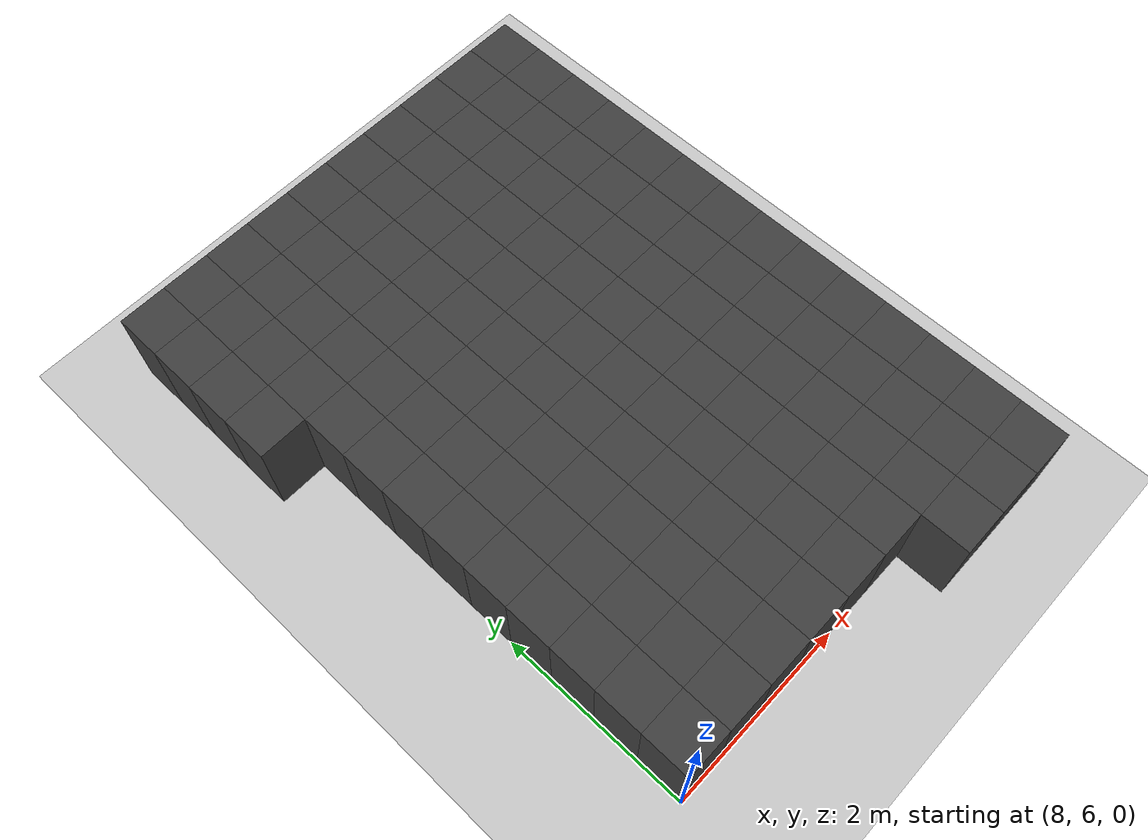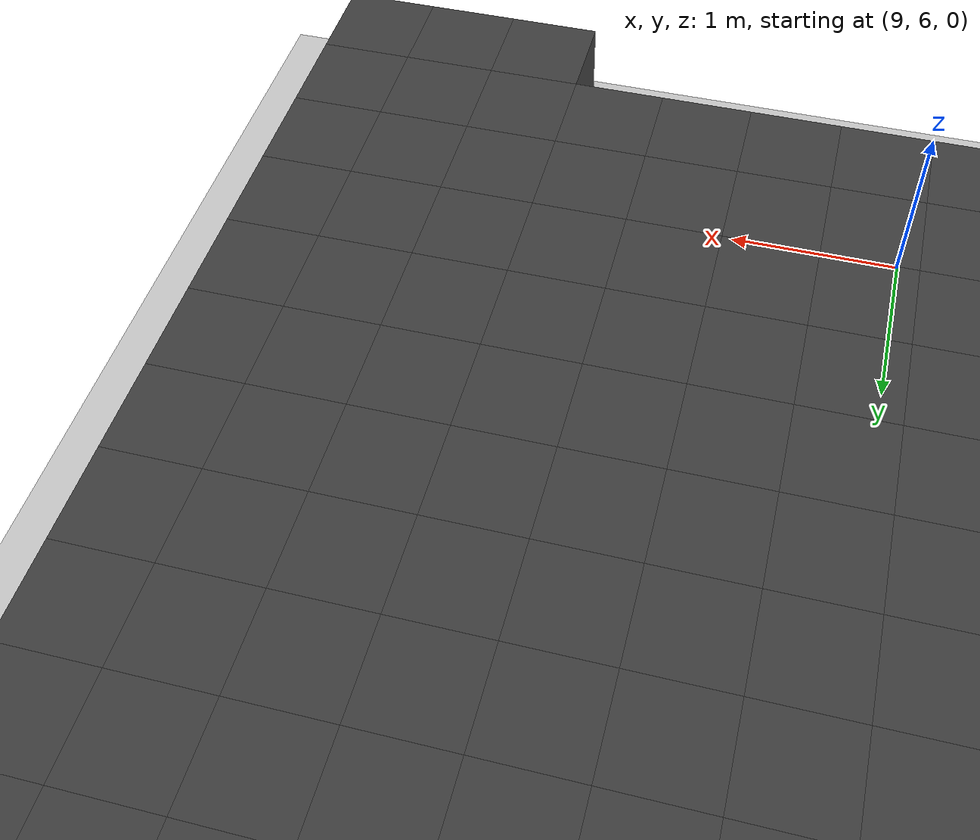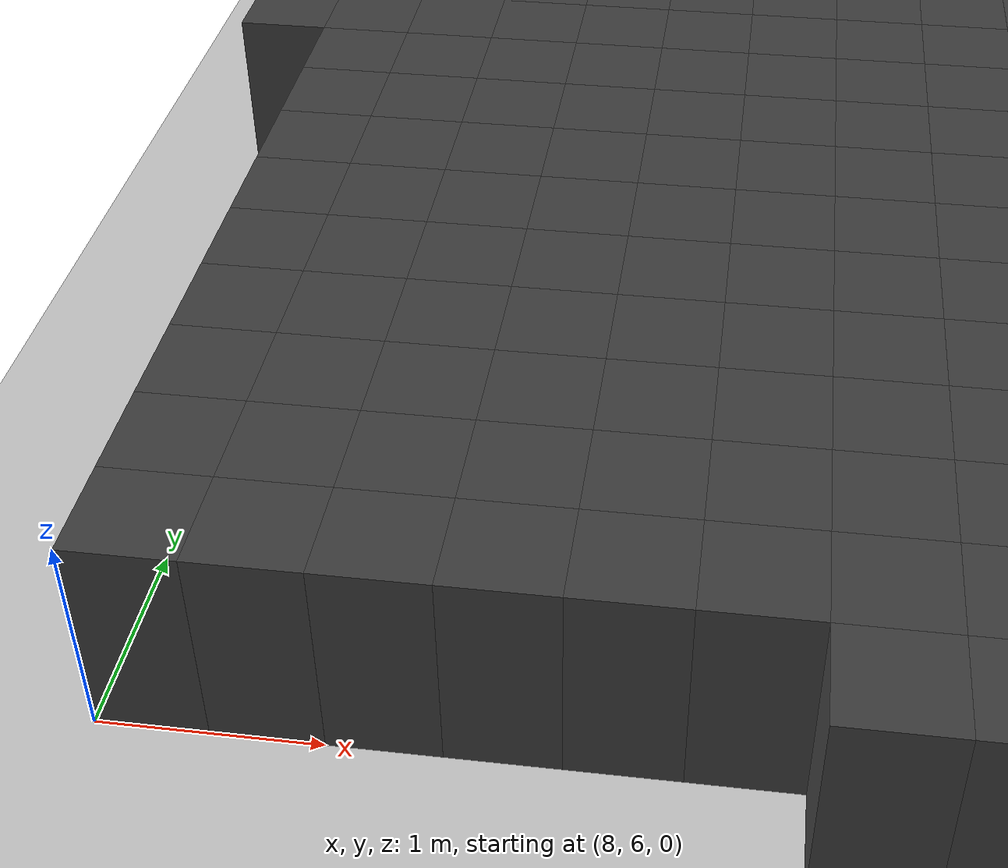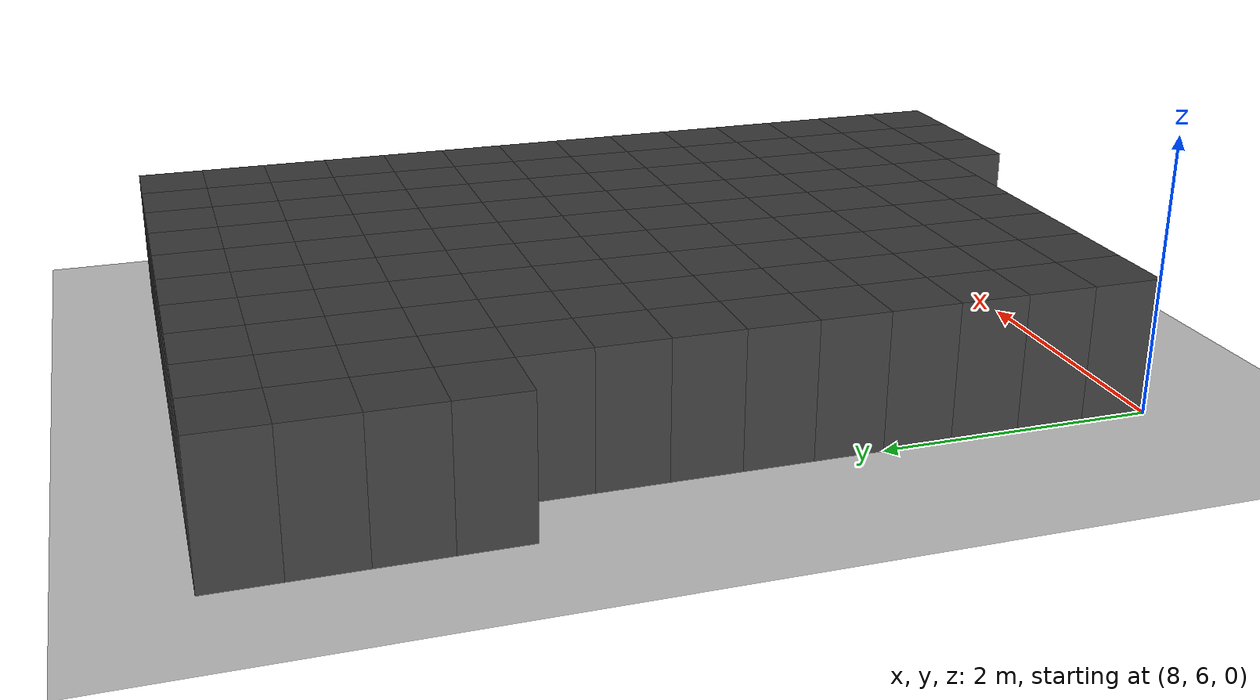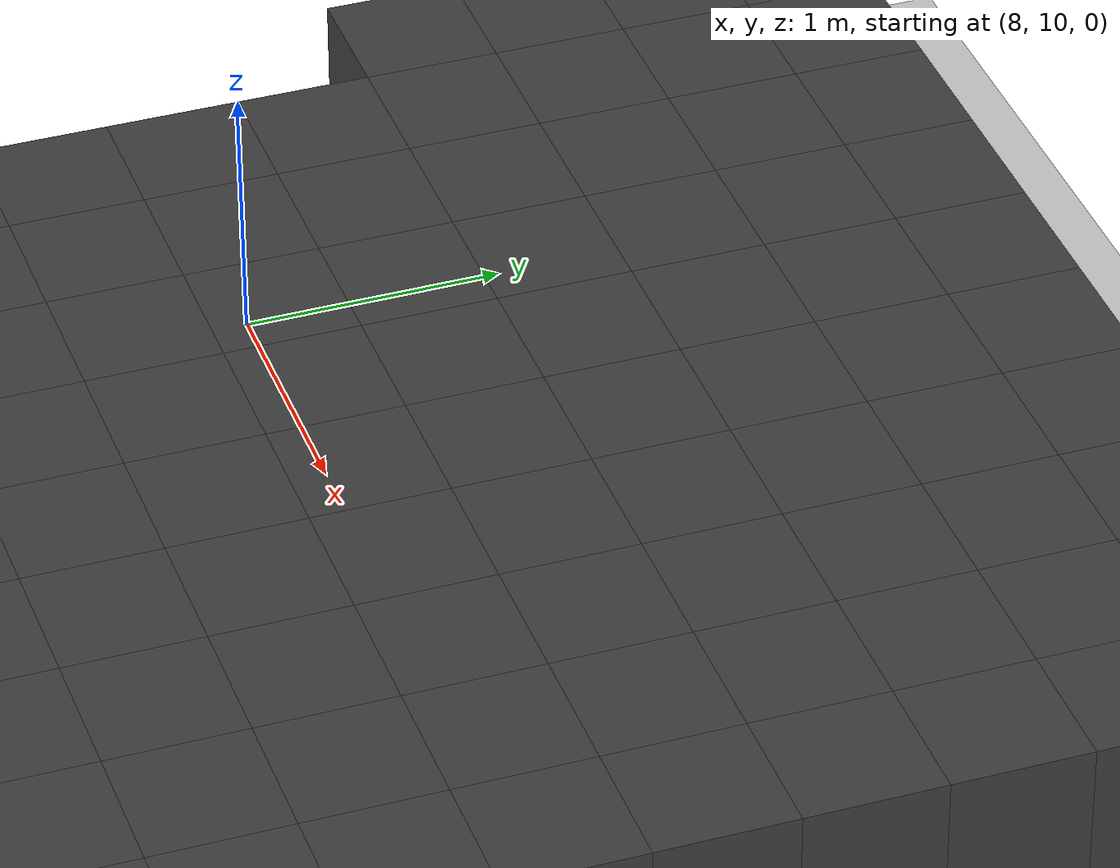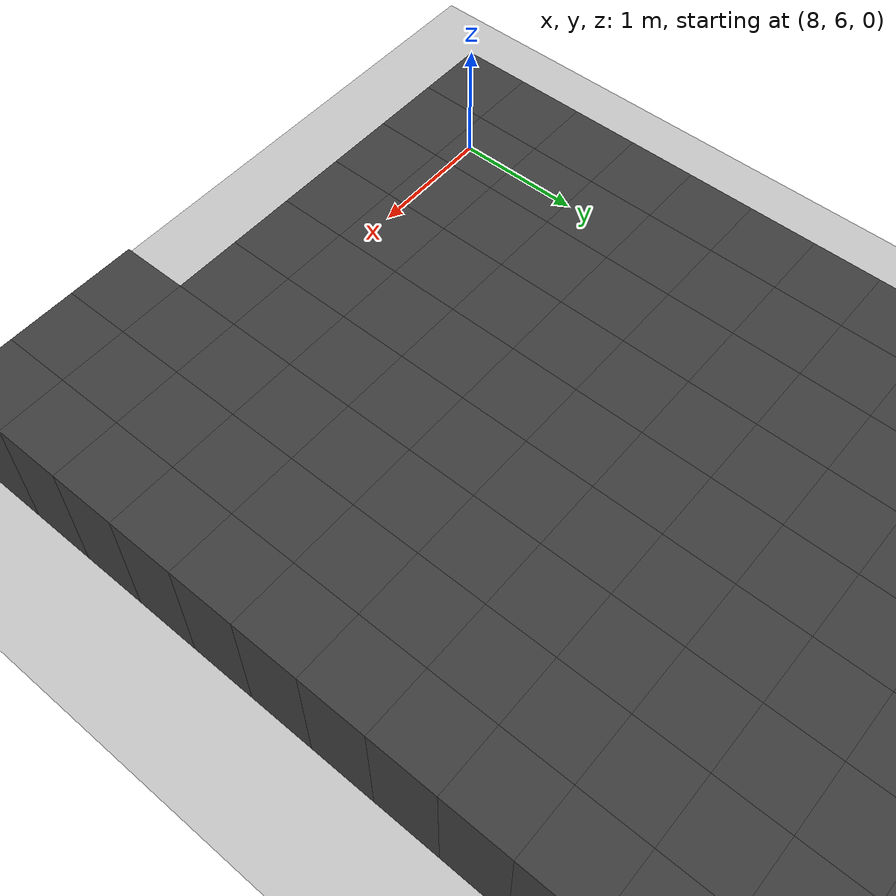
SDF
<sdf version="1.7">
 <world name="map_14668">
  <model name="ground_plane">
   <static>true</static>
   <link name="link">
    <collision name="collision">
     <geometry><plane><normal>0 0 1</normal><size>200 200</size></plane></geometry>
    </collision>
    <visual name="visual">
     <geometry><plane><normal>0 0 1</normal><size>200 200</size></plane></geometry>
     <material><ambient>0.8 0.8 0.8 1</ambient><diffuse>0.8 0.8 0.8 1</diffuse></material>
    </visual>
   </link>
  </model>
  <model name="maze_environment">
   <static>true</static>
   <link name="wall_40">
    <pose>7.750 12.250 0.500 0 0 0</pose>
    <collision name="col"><geometry><box><size>0.5 0.5 1.0</size></box></geometry></collision>
    <visual name="vis">
     <geometry><box><size>0.5 0.5 1.0</size></box></geometry>
     <material><ambient>0.15 0.15 0.15 1</ambient><diffuse>0.25 0.25 0.25 1</diffuse></material>
    </visual>
   </link>
   <link name="wall_41">
    <pose>8.250 12.250 0.500 0 0 0</pose>
    <collision name="col"><geometry><box><size>0.5 0.5 1.0</size></box></geometry></collision>
    <visual name="vis">
     <geometry><box><size>0.5 0.5 1.0</size></box></geometry>
     <material><ambient>0.15 0.15 0.15 1</ambient><diffuse>0.25 0.25 0.25 1</diffuse></material>
    </visual>
   </link>
   <link name="wall_42">
    <pose>8.750 12.250 0.500 0 0 0</pose>
    <collision name="col"><geometry><box><size>0.5 0.5 1.0</size></box></geometry></collision>
    <visual name="vis">
     <geometry><box><size>0.5 0.5 1.0</size></box></geometry>
     <material><ambient>0.15 0.15 0.15 1</ambient><diffuse>0.25 0.25 0.25 1</diffuse></material>
    </visual>
   </link>
   <link name="wall_43">
    <pose>9.250 12.250 0.500 0 0 0</pose>
    <collision name="col"><geometry><box><size>0.5 0.5 1.0</size></box></geometry></collision>
    <visual name="vis">
     <geometry><box><size>0.5 0.5 1.0</size></box></geometry>
     <material><ambient>0.15 0.15 0.15 1</ambient><diffuse>0.25 0.25 0.25 1</diffuse></material>
    </visual>
   </link>
   <link name="wall_44">
    <pose>9.750 12.250 0.500 0 0 0</pose>
    <collision name="col"><geometry><box><size>0.5 0.5 1.0</size></box></geometry></collision>
    <visual name="vis">
     <geometry><box><size>0.5 0.5 1.0</size></box></geometry>
     <material><ambient>0.15 0.15 0.15 1</ambient><diffuse>0.25 0.25 0.25 1</diffuse></material>
    </visual>
   </link>
   <link name="wall_45">
    <pose>10.250 12.250 0.500 0 0 0</pose>
    <collision name="col"><geometry><box><size>0.5 0.5 1.0</size></box></geometry></collision>
    <visual name="vis">
     <geometry><box><size>0.5 0.5 1.0</size></box></geometry>
     <material><ambient>0.15 0.15 0.15 1</ambient><diffuse>0.25 0.25 0.25 1</diffuse></material>
    </visual>
   </link>
   <link name="wall_46">
    <pose>10.750 12.250 0.500 0 0 0</pose>
    <collision name="col"><geometry><box><size>0.5 0.5 1.0</size></box></geometry></collision>
    <visual name="vis">
     <geometry><box><size>0.5 0.5 1.0</size></box></geometry>
     <material><ambient>0.15 0.15 0.15 1</ambient><diffuse>0.25 0.25 0.25 1</diffuse></material>
    </visual>
   </link>
   <link name="wall_47">
    <pose>11.250 12.250 0.500 0 0 0</pose>
    <collision name="col"><geometry><box><size>0.5 0.5 1.0</size></box></geometry></collision>
    <visual name="vis">
     <geometry><box><size>0.5 0.5 1.0</size></box></geometry>
     <material><ambient>0.15 0.15 0.15 1</ambient><diffuse>0.25 0.25 0.25 1</diffuse></material>
    </visual>
   </link>
   <link name="wall_48">
    <pose>11.750 12.250 0.500 0 0 0</pose>
    <collision name="col"><geometry><box><size>0.5 0.5 1.0</size></box></geometry></collision>
    <visual name="vis">
     <geometry><box><size>0.5 0.5 1.0</size></box></geometry>
     <material><ambient>0.15 0.15 0.15 1</ambient><diffuse>0.25 0.25 0.25 1</diffuse></material>
    </visual>
   </link>
   <link name="wall_49">
    <pose>12.250 12.250 0.500 0 0 0</pose>
    <collision name="col"><geometry><box><size>0.5 0.5 1.0</size></box></geometry></collision>
    <visual name="vis">
     <geometry><box><size>0.5 0.5 1.0</size></box></geometry>
     <material><ambient>0.15 0.15 0.15 1</ambient><diffuse>0.25 0.25 0.25 1</diffuse></material>
    </visual>
   </link>
   <link name="wall_87">
    <pose>7.750 11.750 0.500 0 0 0</pose>
    <collision name="col"><geometry><box><size>0.5 0.5 1.0</size></box></geometry></collision>
    <visual name="vis">
     <geometry><box><size>0.5 0.5 1.0</size></box></geometry>
     <material><ambient>0.15 0.15 0.15 1</ambient><diffuse>0.25 0.25 0.25 1</diffuse></material>
    </visual>
   </link>
   <link name="wall_88">
    <pose>8.250 11.750 0.500 0 0 0</pose>
    <collision name="col"><geometry><box><size>0.5 0.5 1.0</size></box></geometry></collision>
    <visual name="vis">
     <geometry><box><size>0.5 0.5 1.0</size></box></geometry>
     <material><ambient>0.15 0.15 0.15 1</ambient><diffuse>0.25 0.25 0.25 1</diffuse></material>
    </visual>
   </link>
   <link name="wall_89">
    <pose>8.750 11.750 0.500 0 0 0</pose>
    <collision name="col"><geometry><box><size>0.5 0.5 1.0</size></box></geometry></collision>
    <visual name="vis">
     <geometry><box><size>0.5 0.5 1.0</size></box></geometry>
     <material><ambient>0.15 0.15 0.15 1</ambient><diffuse>0.25 0.25 0.25 1</diffuse></material>
    </visual>
   </link>
   <link name="wall_90">
    <pose>9.250 11.750 0.500 0 0 0</pose>
    <collision name="col"><geometry><box><size>0.5 0.5 1.0</size></box></geometry></collision>
    <visual name="vis">
     <geometry><box><size>0.5 0.5 1.0</size></box></geometry>
     <material><ambient>0.15 0.15 0.15 1</ambient><diffuse>0.25 0.25 0.25 1</diffuse></material>
    </visual>
   </link>
   <link name="wall_91">
    <pose>9.750 11.750 0.500 0 0 0</pose>
    <collision name="col"><geometry><box><size>0.5 0.5 1.0</size></box></geometry></collision>
    <visual name="vis">
     <geometry><box><size>0.5 0.5 1.0</size></box></geometry>
     <material><ambient>0.15 0.15 0.15 1</ambient><diffuse>0.25 0.25 0.25 1</diffuse></material>
    </visual>
   </link>
   <link name="wall_92">
    <pose>10.250 11.750 0.500 0 0 0</pose>
    <collision name="col"><geometry><box><size>0.5 0.5 1.0</size></box></geometry></collision>
    <visual name="vis">
     <geometry><box><size>0.5 0.5 1.0</size></box></geometry>
     <material><ambient>0.15 0.15 0.15 1</ambient><diffuse>0.25 0.25 0.25 1</diffuse></material>
    </visual>
   </link>
   <link name="wall_93">
    <pose>10.750 11.750 0.500 0 0 0</pose>
    <collision name="col"><geometry><box><size>0.5 0.5 1.0</size></box></geometry></collision>
    <visual name="vis">
     <geometry><box><size>0.5 0.5 1.0</size></box></geometry>
     <material><ambient>0.15 0.15 0.15 1</ambient><diffuse>0.25 0.25 0.25 1</diffuse></material>
    </visual>
   </link>
   <link name="wall_94">
    <pose>11.250 11.750 0.500 0 0 0</pose>
    <collision name="col"><geometry><box><size>0.5 0.5 1.0</size></box></geometry></collision>
    <visual name="vis">
     <geometry><box><size>0.5 0.5 1.0</size></box></geometry>
     <material><ambient>0.15 0.15 0.15 1</ambient><diffuse>0.25 0.25 0.25 1</diffuse></material>
    </visual>
   </link>
   <link name="wall_95">
    <pose>11.750 11.750 0.500 0 0 0</pose>
    <collision name="col"><geometry><box><size>0.5 0.5 1.0</size></box></geometry></collision>
    <visual name="vis">
     <geometry><box><size>0.5 0.5 1.0</size></box></geometry>
     <material><ambient>0.15 0.15 0.15 1</ambient><diffuse>0.25 0.25 0.25 1</diffuse></material>
    </visual>
   </link>
   <link name="wall_96">
    <pose>12.250 11.750 0.500 0 0 0</pose>
    <collision name="col"><geometry><box><size>0.5 0.5 1.0</size></box></geometry></collision>
    <visual name="vis">
     <geometry><box><size>0.5 0.5 1.0</size></box></geometry>
     <material><ambient>0.15 0.15 0.15 1</ambient><diffuse>0.25 0.25 0.25 1</diffuse></material>
    </visual>
   </link>
   <link name="wall_134">
    <pose>7.750 11.250 0.500 0 0 0</pose>
    <collision name="col"><geometry><box><size>0.5 0.5 1.0</size></box></geometry></collision>
    <visual name="vis">
     <geometry><box><size>0.5 0.5 1.0</size></box></geometry>
     <material><ambient>0.15 0.15 0.15 1</ambient><diffuse>0.25 0.25 0.25 1</diffuse></material>
    </visual>
   </link>
   <link name="wall_135">
    <pose>8.250 11.250 0.500 0 0 0</pose>
    <collision name="col"><geometry><box><size>0.5 0.5 1.0</size></box></geometry></collision>
    <visual name="vis">
     <geometry><box><size>0.5 0.5 1.0</size></box></geometry>
     <material><ambient>0.15 0.15 0.15 1</ambient><diffuse>0.25 0.25 0.25 1</diffuse></material>
    </visual>
   </link>
   <link name="wall_136">
    <pose>8.750 11.250 0.500 0 0 0</pose>
    <collision name="col"><geometry><box><size>0.5 0.5 1.0</size></box></geometry></collision>
    <visual name="vis">
     <geometry><box><size>0.5 0.5 1.0</size></box></geometry>
     <material><ambient>0.15 0.15 0.15 1</ambient><diffuse>0.25 0.25 0.25 1</diffuse></material>
    </visual>
   </link>
   <link name="wall_137">
    <pose>9.250 11.250 0.500 0 0 0</pose>
    <collision name="col"><geometry><box><size>0.5 0.5 1.0</size></box></geometry></collision>
    <visual name="vis">
     <geometry><box><size>0.5 0.5 1.0</size></box></geometry>
     <material><ambient>0.15 0.15 0.15 1</ambient><diffuse>0.25 0.25 0.25 1</diffuse></material>
    </visual>
   </link>
   <link name="wall_138">
    <pose>9.750 11.250 0.500 0 0 0</pose>
    <collision name="col"><geometry><box><size>0.5 0.5 1.0</size></box></geometry></collision>
    <visual name="vis">
     <geometry><box><size>0.5 0.5 1.0</size></box></geometry>
     <material><ambient>0.15 0.15 0.15 1</ambient><diffuse>0.25 0.25 0.25 1</diffuse></material>
    </visual>
   </link>
   <link name="wall_139">
    <pose>10.250 11.250 0.500 0 0 0</pose>
    <collision name="col"><geometry><box><size>0.5 0.5 1.0</size></box></geometry></collision>
    <visual name="vis">
     <geometry><box><size>0.5 0.5 1.0</size></box></geometry>
     <material><ambient>0.15 0.15 0.15 1</ambient><diffuse>0.25 0.25 0.25 1</diffuse></material>
    </visual>
   </link>
   <link name="wall_140">
    <pose>10.750 11.250 0.500 0 0 0</pose>
    <collision name="col"><geometry><box><size>0.5 0.5 1.0</size></box></geometry></collision>
    <visual name="vis">
     <geometry><box><size>0.5 0.5 1.0</size></box></geometry>
     <material><ambient>0.15 0.15 0.15 1</ambient><diffuse>0.25 0.25 0.25 1</diffuse></material>
    </visual>
   </link>
   <link name="wall_141">
    <pose>11.250 11.250 0.500 0 0 0</pose>
    <collision name="col"><geometry><box><size>0.5 0.5 1.0</size></box></geometry></collision>
    <visual name="vis">
     <geometry><box><size>0.5 0.5 1.0</size></box></geometry>
     <material><ambient>0.15 0.15 0.15 1</ambient><diffuse>0.25 0.25 0.25 1</diffuse></material>
    </visual>
   </link>
   <link name="wall_142">
    <pose>11.750 11.250 0.500 0 0 0</pose>
    <collision name="col"><geometry><box><size>0.5 0.5 1.0</size></box></geometry></collision>
    <visual name="vis">
     <geometry><box><size>0.5 0.5 1.0</size></box></geometry>
     <material><ambient>0.15 0.15 0.15 1</ambient><diffuse>0.25 0.25 0.25 1</diffuse></material>
    </visual>
   </link>
   <link name="wall_143">
    <pose>12.250 11.250 0.500 0 0 0</pose>
    <collision name="col"><geometry><box><size>0.5 0.5 1.0</size></box></geometry></collision>
    <visual name="vis">
     <geometry><box><size>0.5 0.5 1.0</size></box></geometry>
     <material><ambient>0.15 0.15 0.15 1</ambient><diffuse>0.25 0.25 0.25 1</diffuse></material>
    </visual>
   </link>
   <link name="wall_173">
    <pose>7.750 10.750 0.500 0 0 0</pose>
    <collision name="col"><geometry><box><size>0.5 0.5 1.0</size></box></geometry></collision>
    <visual name="vis">
     <geometry><box><size>0.5 0.5 1.0</size></box></geometry>
     <material><ambient>0.15 0.15 0.15 1</ambient><diffuse>0.25 0.25 0.25 1</diffuse></material>
    </visual>
   </link>
   <link name="wall_174">
    <pose>8.250 10.750 0.500 0 0 0</pose>
    <collision name="col"><geometry><box><size>0.5 0.5 1.0</size></box></geometry></collision>
    <visual name="vis">
     <geometry><box><size>0.5 0.5 1.0</size></box></geometry>
     <material><ambient>0.15 0.15 0.15 1</ambient><diffuse>0.25 0.25 0.25 1</diffuse></material>
    </visual>
   </link>
   <link name="wall_175">
    <pose>8.750 10.750 0.500 0 0 0</pose>
    <collision name="col"><geometry><box><size>0.5 0.5 1.0</size></box></geometry></collision>
    <visual name="vis">
     <geometry><box><size>0.5 0.5 1.0</size></box></geometry>
     <material><ambient>0.15 0.15 0.15 1</ambient><diffuse>0.25 0.25 0.25 1</diffuse></material>
    </visual>
   </link>
   <link name="wall_176">
    <pose>9.250 10.750 0.500 0 0 0</pose>
    <collision name="col"><geometry><box><size>0.5 0.5 1.0</size></box></geometry></collision>
    <visual name="vis">
     <geometry><box><size>0.5 0.5 1.0</size></box></geometry>
     <material><ambient>0.15 0.15 0.15 1</ambient><diffuse>0.25 0.25 0.25 1</diffuse></material>
    </visual>
   </link>
   <link name="wall_177">
    <pose>9.750 10.750 0.500 0 0 0</pose>
    <collision name="col"><geometry><box><size>0.5 0.5 1.0</size></box></geometry></collision>
    <visual name="vis">
     <geometry><box><size>0.5 0.5 1.0</size></box></geometry>
     <material><ambient>0.15 0.15 0.15 1</ambient><diffuse>0.25 0.25 0.25 1</diffuse></material>
    </visual>
   </link>
   <link name="wall_178">
    <pose>10.250 10.750 0.500 0 0 0</pose>
    <collision name="col"><geometry><box><size>0.5 0.5 1.0</size></box></geometry></collision>
    <visual name="vis">
     <geometry><box><size>0.5 0.5 1.0</size></box></geometry>
     <material><ambient>0.15 0.15 0.15 1</ambient><diffuse>0.25 0.25 0.25 1</diffuse></material>
    </visual>
   </link>
   <link name="wall_179">
    <pose>10.750 10.750 0.500 0 0 0</pose>
    <collision name="col"><geometry><box><size>0.5 0.5 1.0</size></box></geometry></collision>
    <visual name="vis">
     <geometry><box><size>0.5 0.5 1.0</size></box></geometry>
     <material><ambient>0.15 0.15 0.15 1</ambient><diffuse>0.25 0.25 0.25 1</diffuse></material>
    </visual>
   </link>
   <link name="wall_180">
    <pose>11.250 10.750 0.500 0 0 0</pose>
    <collision name="col"><geometry><box><size>0.5 0.5 1.0</size></box></geometry></collision>
    <visual name="vis">
     <geometry><box><size>0.5 0.5 1.0</size></box></geometry>
     <material><ambient>0.15 0.15 0.15 1</ambient><diffuse>0.25 0.25 0.25 1</diffuse></material>
    </visual>
   </link>
   <link name="wall_181">
    <pose>11.750 10.750 0.500 0 0 0</pose>
    <collision name="col"><geometry><box><size>0.5 0.5 1.0</size></box></geometry></collision>
    <visual name="vis">
     <geometry><box><size>0.5 0.5 1.0</size></box></geometry>
     <material><ambient>0.15 0.15 0.15 1</ambient><diffuse>0.25 0.25 0.25 1</diffuse></material>
    </visual>
   </link>
   <link name="wall_182">
    <pose>12.250 10.750 0.500 0 0 0</pose>
    <collision name="col"><geometry><box><size>0.5 0.5 1.0</size></box></geometry></collision>
    <visual name="vis">
     <geometry><box><size>0.5 0.5 1.0</size></box></geometry>
     <material><ambient>0.15 0.15 0.15 1</ambient><diffuse>0.25 0.25 0.25 1</diffuse></material>
    </visual>
   </link>
   <link name="wall_215">
    <pose>8.250 10.250 0.500 0 0 0</pose>
    <collision name="col"><geometry><box><size>0.5 0.5 1.0</size></box></geometry></collision>
    <visual name="vis">
     <geometry><box><size>0.5 0.5 1.0</size></box></geometry>
     <material><ambient>0.15 0.15 0.15 1</ambient><diffuse>0.25 0.25 0.25 1</diffuse></material>
    </visual>
   </link>
   <link name="wall_216">
    <pose>8.750 10.250 0.500 0 0 0</pose>
    <collision name="col"><geometry><box><size>0.5 0.5 1.0</size></box></geometry></collision>
    <visual name="vis">
     <geometry><box><size>0.5 0.5 1.0</size></box></geometry>
     <material><ambient>0.15 0.15 0.15 1</ambient><diffuse>0.25 0.25 0.25 1</diffuse></material>
    </visual>
   </link>
   <link name="wall_217">
    <pose>9.250 10.250 0.500 0 0 0</pose>
    <collision name="col"><geometry><box><size>0.5 0.5 1.0</size></box></geometry></collision>
    <visual name="vis">
     <geometry><box><size>0.5 0.5 1.0</size></box></geometry>
     <material><ambient>0.15 0.15 0.15 1</ambient><diffuse>0.25 0.25 0.25 1</diffuse></material>
    </visual>
   </link>
   <link name="wall_218">
    <pose>9.750 10.250 0.500 0 0 0</pose>
    <collision name="col"><geometry><box><size>0.5 0.5 1.0</size></box></geometry></collision>
    <visual name="vis">
     <geometry><box><size>0.5 0.5 1.0</size></box></geometry>
     <material><ambient>0.15 0.15 0.15 1</ambient><diffuse>0.25 0.25 0.25 1</diffuse></material>
    </visual>
   </link>
   <link name="wall_219">
    <pose>10.250 10.250 0.500 0 0 0</pose>
    <collision name="col"><geometry><box><size>0.5 0.5 1.0</size></box></geometry></collision>
    <visual name="vis">
     <geometry><box><size>0.5 0.5 1.0</size></box></geometry>
     <material><ambient>0.15 0.15 0.15 1</ambient><diffuse>0.25 0.25 0.25 1</diffuse></material>
    </visual>
   </link>
   <link name="wall_220">
    <pose>10.750 10.250 0.500 0 0 0</pose>
    <collision name="col"><geometry><box><size>0.5 0.5 1.0</size></box></geometry></collision>
    <visual name="vis">
     <geometry><box><size>0.5 0.5 1.0</size></box></geometry>
     <material><ambient>0.15 0.15 0.15 1</ambient><diffuse>0.25 0.25 0.25 1</diffuse></material>
    </visual>
   </link>
   <link name="wall_221">
    <pose>11.250 10.250 0.500 0 0 0</pose>
    <collision name="col"><geometry><box><size>0.5 0.5 1.0</size></box></geometry></collision>
    <visual name="vis">
     <geometry><box><size>0.5 0.5 1.0</size></box></geometry>
     <material><ambient>0.15 0.15 0.15 1</ambient><diffuse>0.25 0.25 0.25 1</diffuse></material>
    </visual>
   </link>
   <link name="wall_222">
    <pose>11.750 10.250 0.500 0 0 0</pose>
    <collision name="col"><geometry><box><size>0.5 0.5 1.0</size></box></geometry></collision>
    <visual name="vis">
     <geometry><box><size>0.5 0.5 1.0</size></box></geometry>
     <material><ambient>0.15 0.15 0.15 1</ambient><diffuse>0.25 0.25 0.25 1</diffuse></material>
    </visual>
   </link>
   <link name="wall_223">
    <pose>12.250 10.250 0.500 0 0 0</pose>
    <collision name="col"><geometry><box><size>0.5 0.5 1.0</size></box></geometry></collision>
    <visual name="vis">
     <geometry><box><size>0.5 0.5 1.0</size></box></geometry>
     <material><ambient>0.15 0.15 0.15 1</ambient><diffuse>0.25 0.25 0.25 1</diffuse></material>
    </visual>
   </link>
   <link name="wall_242">
    <pose>8.250 9.750 0.500 0 0 0</pose>
    <collision name="col"><geometry><box><size>0.5 0.5 1.0</size></box></geometry></collision>
    <visual name="vis">
     <geometry><box><size>0.5 0.5 1.0</size></box></geometry>
     <material><ambient>0.15 0.15 0.15 1</ambient><diffuse>0.25 0.25 0.25 1</diffuse></material>
    </visual>
   </link>
   <link name="wall_243">
    <pose>8.750 9.750 0.500 0 0 0</pose>
    <collision name="col"><geometry><box><size>0.5 0.5 1.0</size></box></geometry></collision>
    <visual name="vis">
     <geometry><box><size>0.5 0.5 1.0</size></box></geometry>
     <material><ambient>0.15 0.15 0.15 1</ambient><diffuse>0.25 0.25 0.25 1</diffuse></material>
    </visual>
   </link>
   <link name="wall_244">
    <pose>9.250 9.750 0.500 0 0 0</pose>
    <collision name="col"><geometry><box><size>0.5 0.5 1.0</size></box></geometry></collision>
    <visual name="vis">
     <geometry><box><size>0.5 0.5 1.0</size></box></geometry>
     <material><ambient>0.15 0.15 0.15 1</ambient><diffuse>0.25 0.25 0.25 1</diffuse></material>
    </visual>
   </link>
   <link name="wall_245">
    <pose>9.750 9.750 0.500 0 0 0</pose>
    <collision name="col"><geometry><box><size>0.5 0.5 1.0</size></box></geometry></collision>
    <visual name="vis">
     <geometry><box><size>0.5 0.5 1.0</size></box></geometry>
     <material><ambient>0.15 0.15 0.15 1</ambient><diffuse>0.25 0.25 0.25 1</diffuse></material>
    </visual>
   </link>
   <link name="wall_246">
    <pose>10.250 9.750 0.500 0 0 0</pose>
    <collision name="col"><geometry><box><size>0.5 0.5 1.0</size></box></geometry></collision>
    <visual name="vis">
     <geometry><box><size>0.5 0.5 1.0</size></box></geometry>
     <material><ambient>0.15 0.15 0.15 1</ambient><diffuse>0.25 0.25 0.25 1</diffuse></material>
    </visual>
   </link>
   <link name="wall_247">
    <pose>10.750 9.750 0.500 0 0 0</pose>
    <collision name="col"><geometry><box><size>0.5 0.5 1.0</size></box></geometry></collision>
    <visual name="vis">
     <geometry><box><size>0.5 0.5 1.0</size></box></geometry>
     <material><ambient>0.15 0.15 0.15 1</ambient><diffuse>0.25 0.25 0.25 1</diffuse></material>
    </visual>
   </link>
   <link name="wall_248">
    <pose>11.250 9.750 0.500 0 0 0</pose>
    <collision name="col"><geometry><box><size>0.5 0.5 1.0</size></box></geometry></collision>
    <visual name="vis">
     <geometry><box><size>0.5 0.5 1.0</size></box></geometry>
     <material><ambient>0.15 0.15 0.15 1</ambient><diffuse>0.25 0.25 0.25 1</diffuse></material>
    </visual>
   </link>
   <link name="wall_249">
    <pose>11.750 9.750 0.500 0 0 0</pose>
    <collision name="col"><geometry><box><size>0.5 0.5 1.0</size></box></geometry></collision>
    <visual name="vis">
     <geometry><box><size>0.5 0.5 1.0</size></box></geometry>
     <material><ambient>0.15 0.15 0.15 1</ambient><diffuse>0.25 0.25 0.25 1</diffuse></material>
    </visual>
   </link>
   <link name="wall_250">
    <pose>12.250 9.750 0.500 0 0 0</pose>
    <collision name="col"><geometry><box><size>0.5 0.5 1.0</size></box></geometry></collision>
    <visual name="vis">
     <geometry><box><size>0.5 0.5 1.0</size></box></geometry>
     <material><ambient>0.15 0.15 0.15 1</ambient><diffuse>0.25 0.25 0.25 1</diffuse></material>
    </visual>
   </link>
   <link name="wall_272">
    <pose>8.250 9.250 0.500 0 0 0</pose>
    <collision name="col"><geometry><box><size>0.5 0.5 1.0</size></box></geometry></collision>
    <visual name="vis">
     <geometry><box><size>0.5 0.5 1.0</size></box></geometry>
     <material><ambient>0.15 0.15 0.15 1</ambient><diffuse>0.25 0.25 0.25 1</diffuse></material>
    </visual>
   </link>
   <link name="wall_273">
    <pose>8.750 9.250 0.500 0 0 0</pose>
    <collision name="col"><geometry><box><size>0.5 0.5 1.0</size></box></geometry></collision>
    <visual name="vis">
     <geometry><box><size>0.5 0.5 1.0</size></box></geometry>
     <material><ambient>0.15 0.15 0.15 1</ambient><diffuse>0.25 0.25 0.25 1</diffuse></material>
    </visual>
   </link>
   <link name="wall_274">
    <pose>9.250 9.250 0.500 0 0 0</pose>
    <collision name="col"><geometry><box><size>0.5 0.5 1.0</size></box></geometry></collision>
    <visual name="vis">
     <geometry><box><size>0.5 0.5 1.0</size></box></geometry>
     <material><ambient>0.15 0.15 0.15 1</ambient><diffuse>0.25 0.25 0.25 1</diffuse></material>
    </visual>
   </link>
   <link name="wall_275">
    <pose>9.750 9.250 0.500 0 0 0</pose>
    <collision name="col"><geometry><box><size>0.5 0.5 1.0</size></box></geometry></collision>
    <visual name="vis">
     <geometry><box><size>0.5 0.5 1.0</size></box></geometry>
     <material><ambient>0.15 0.15 0.15 1</ambient><diffuse>0.25 0.25 0.25 1</diffuse></material>
    </visual>
   </link>
   <link name="wall_276">
    <pose>10.250 9.250 0.500 0 0 0</pose>
    <collision name="col"><geometry><box><size>0.5 0.5 1.0</size></box></geometry></collision>
    <visual name="vis">
     <geometry><box><size>0.5 0.5 1.0</size></box></geometry>
     <material><ambient>0.15 0.15 0.15 1</ambient><diffuse>0.25 0.25 0.25 1</diffuse></material>
    </visual>
   </link>
   <link name="wall_277">
    <pose>10.750 9.250 0.500 0 0 0</pose>
    <collision name="col"><geometry><box><size>0.5 0.5 1.0</size></box></geometry></collision>
    <visual name="vis">
     <geometry><box><size>0.5 0.5 1.0</size></box></geometry>
     <material><ambient>0.15 0.15 0.15 1</ambient><diffuse>0.25 0.25 0.25 1</diffuse></material>
    </visual>
   </link>
   <link name="wall_278">
    <pose>11.250 9.250 0.500 0 0 0</pose>
    <collision name="col"><geometry><box><size>0.5 0.5 1.0</size></box></geometry></collision>
    <visual name="vis">
     <geometry><box><size>0.5 0.5 1.0</size></box></geometry>
     <material><ambient>0.15 0.15 0.15 1</ambient><diffuse>0.25 0.25 0.25 1</diffuse></material>
    </visual>
   </link>
   <link name="wall_279">
    <pose>11.750 9.250 0.500 0 0 0</pose>
    <collision name="col"><geometry><box><size>0.5 0.5 1.0</size></box></geometry></collision>
    <visual name="vis">
     <geometry><box><size>0.5 0.5 1.0</size></box></geometry>
     <material><ambient>0.15 0.15 0.15 1</ambient><diffuse>0.25 0.25 0.25 1</diffuse></material>
    </visual>
   </link>
   <link name="wall_280">
    <pose>12.250 9.250 0.500 0 0 0</pose>
    <collision name="col"><geometry><box><size>0.5 0.5 1.0</size></box></geometry></collision>
    <visual name="vis">
     <geometry><box><size>0.5 0.5 1.0</size></box></geometry>
     <material><ambient>0.15 0.15 0.15 1</ambient><diffuse>0.25 0.25 0.25 1</diffuse></material>
    </visual>
   </link>
   <link name="wall_309">
    <pose>8.250 8.750 0.500 0 0 0</pose>
    <collision name="col"><geometry><box><size>0.5 0.5 1.0</size></box></geometry></collision>
    <visual name="vis">
     <geometry><box><size>0.5 0.5 1.0</size></box></geometry>
     <material><ambient>0.15 0.15 0.15 1</ambient><diffuse>0.25 0.25 0.25 1</diffuse></material>
    </visual>
   </link>
   <link name="wall_310">
    <pose>8.750 8.750 0.500 0 0 0</pose>
    <collision name="col"><geometry><box><size>0.5 0.5 1.0</size></box></geometry></collision>
    <visual name="vis">
     <geometry><box><size>0.5 0.5 1.0</size></box></geometry>
     <material><ambient>0.15 0.15 0.15 1</ambient><diffuse>0.25 0.25 0.25 1</diffuse></material>
    </visual>
   </link>
   <link name="wall_311">
    <pose>9.250 8.750 0.500 0 0 0</pose>
    <collision name="col"><geometry><box><size>0.5 0.5 1.0</size></box></geometry></collision>
    <visual name="vis">
     <geometry><box><size>0.5 0.5 1.0</size></box></geometry>
     <material><ambient>0.15 0.15 0.15 1</ambient><diffuse>0.25 0.25 0.25 1</diffuse></material>
    </visual>
   </link>
   <link name="wall_312">
    <pose>9.750 8.750 0.500 0 0 0</pose>
    <collision name="col"><geometry><box><size>0.5 0.5 1.0</size></box></geometry></collision>
    <visual name="vis">
     <geometry><box><size>0.5 0.5 1.0</size></box></geometry>
     <material><ambient>0.15 0.15 0.15 1</ambient><diffuse>0.25 0.25 0.25 1</diffuse></material>
    </visual>
   </link>
   <link name="wall_313">
    <pose>10.250 8.750 0.500 0 0 0</pose>
    <collision name="col"><geometry><box><size>0.5 0.5 1.0</size></box></geometry></collision>
    <visual name="vis">
     <geometry><box><size>0.5 0.5 1.0</size></box></geometry>
     <material><ambient>0.15 0.15 0.15 1</ambient><diffuse>0.25 0.25 0.25 1</diffuse></material>
    </visual>
   </link>
   <link name="wall_314">
    <pose>10.750 8.750 0.500 0 0 0</pose>
    <collision name="col"><geometry><box><size>0.5 0.5 1.0</size></box></geometry></collision>
    <visual name="vis">
     <geometry><box><size>0.5 0.5 1.0</size></box></geometry>
     <material><ambient>0.15 0.15 0.15 1</ambient><diffuse>0.25 0.25 0.25 1</diffuse></material>
    </visual>
   </link>
   <link name="wall_315">
    <pose>11.250 8.750 0.500 0 0 0</pose>
    <collision name="col"><geometry><box><size>0.5 0.5 1.0</size></box></geometry></collision>
    <visual name="vis">
     <geometry><box><size>0.5 0.5 1.0</size></box></geometry>
     <material><ambient>0.15 0.15 0.15 1</ambient><diffuse>0.25 0.25 0.25 1</diffuse></material>
    </visual>
   </link>
   <link name="wall_316">
    <pose>11.750 8.750 0.500 0 0 0</pose>
    <collision name="col"><geometry><box><size>0.5 0.5 1.0</size></box></geometry></collision>
    <visual name="vis">
     <geometry><box><size>0.5 0.5 1.0</size></box></geometry>
     <material><ambient>0.15 0.15 0.15 1</ambient><diffuse>0.25 0.25 0.25 1</diffuse></material>
    </visual>
   </link>
   <link name="wall_317">
    <pose>12.250 8.750 0.500 0 0 0</pose>
    <collision name="col"><geometry><box><size>0.5 0.5 1.0</size></box></geometry></collision>
    <visual name="vis">
     <geometry><box><size>0.5 0.5 1.0</size></box></geometry>
     <material><ambient>0.15 0.15 0.15 1</ambient><diffuse>0.25 0.25 0.25 1</diffuse></material>
    </visual>
   </link>
   <link name="wall_343">
    <pose>8.250 8.250 0.500 0 0 0</pose>
    <collision name="col"><geometry><box><size>0.5 0.5 1.0</size></box></geometry></collision>
    <visual name="vis">
     <geometry><box><size>0.5 0.5 1.0</size></box></geometry>
     <material><ambient>0.15 0.15 0.15 1</ambient><diffuse>0.25 0.25 0.25 1</diffuse></material>
    </visual>
   </link>
   <link name="wall_344">
    <pose>8.750 8.250 0.500 0 0 0</pose>
    <collision name="col"><geometry><box><size>0.5 0.5 1.0</size></box></geometry></collision>
    <visual name="vis">
     <geometry><box><size>0.5 0.5 1.0</size></box></geometry>
     <material><ambient>0.15 0.15 0.15 1</ambient><diffuse>0.25 0.25 0.25 1</diffuse></material>
    </visual>
   </link>
   <link name="wall_345">
    <pose>9.250 8.250 0.500 0 0 0</pose>
    <collision name="col"><geometry><box><size>0.5 0.5 1.0</size></box></geometry></collision>
    <visual name="vis">
     <geometry><box><size>0.5 0.5 1.0</size></box></geometry>
     <material><ambient>0.15 0.15 0.15 1</ambient><diffuse>0.25 0.25 0.25 1</diffuse></material>
    </visual>
   </link>
   <link name="wall_346">
    <pose>9.750 8.250 0.500 0 0 0</pose>
    <collision name="col"><geometry><box><size>0.5 0.5 1.0</size></box></geometry></collision>
    <visual name="vis">
     <geometry><box><size>0.5 0.5 1.0</size></box></geometry>
     <material><ambient>0.15 0.15 0.15 1</ambient><diffuse>0.25 0.25 0.25 1</diffuse></material>
    </visual>
   </link>
   <link name="wall_347">
    <pose>10.250 8.250 0.500 0 0 0</pose>
    <collision name="col"><geometry><box><size>0.5 0.5 1.0</size></box></geometry></collision>
    <visual name="vis">
     <geometry><box><size>0.5 0.5 1.0</size></box></geometry>
     <material><ambient>0.15 0.15 0.15 1</ambient><diffuse>0.25 0.25 0.25 1</diffuse></material>
    </visual>
   </link>
   <link name="wall_348">
    <pose>10.750 8.250 0.500 0 0 0</pose>
    <collision name="col"><geometry><box><size>0.5 0.5 1.0</size></box></geometry></collision>
    <visual name="vis">
     <geometry><box><size>0.5 0.5 1.0</size></box></geometry>
     <material><ambient>0.15 0.15 0.15 1</ambient><diffuse>0.25 0.25 0.25 1</diffuse></material>
    </visual>
   </link>
   <link name="wall_349">
    <pose>11.250 8.250 0.500 0 0 0</pose>
    <collision name="col"><geometry><box><size>0.5 0.5 1.0</size></box></geometry></collision>
    <visual name="vis">
     <geometry><box><size>0.5 0.5 1.0</size></box></geometry>
     <material><ambient>0.15 0.15 0.15 1</ambient><diffuse>0.25 0.25 0.25 1</diffuse></material>
    </visual>
   </link>
   <link name="wall_350">
    <pose>11.750 8.250 0.500 0 0 0</pose>
    <collision name="col"><geometry><box><size>0.5 0.5 1.0</size></box></geometry></collision>
    <visual name="vis">
     <geometry><box><size>0.5 0.5 1.0</size></box></geometry>
     <material><ambient>0.15 0.15 0.15 1</ambient><diffuse>0.25 0.25 0.25 1</diffuse></material>
    </visual>
   </link>
   <link name="wall_351">
    <pose>12.250 8.250 0.500 0 0 0</pose>
    <collision name="col"><geometry><box><size>0.5 0.5 1.0</size></box></geometry></collision>
    <visual name="vis">
     <geometry><box><size>0.5 0.5 1.0</size></box></geometry>
     <material><ambient>0.15 0.15 0.15 1</ambient><diffuse>0.25 0.25 0.25 1</diffuse></material>
    </visual>
   </link>
   <link name="wall_378">
    <pose>8.250 7.750 0.500 0 0 0</pose>
    <collision name="col"><geometry><box><size>0.5 0.5 1.0</size></box></geometry></collision>
    <visual name="vis">
     <geometry><box><size>0.5 0.5 1.0</size></box></geometry>
     <material><ambient>0.15 0.15 0.15 1</ambient><diffuse>0.25 0.25 0.25 1</diffuse></material>
    </visual>
   </link>
   <link name="wall_379">
    <pose>8.750 7.750 0.500 0 0 0</pose>
    <collision name="col"><geometry><box><size>0.5 0.5 1.0</size></box></geometry></collision>
    <visual name="vis">
     <geometry><box><size>0.5 0.5 1.0</size></box></geometry>
     <material><ambient>0.15 0.15 0.15 1</ambient><diffuse>0.25 0.25 0.25 1</diffuse></material>
    </visual>
   </link>
   <link name="wall_380">
    <pose>9.250 7.750 0.500 0 0 0</pose>
    <collision name="col"><geometry><box><size>0.5 0.5 1.0</size></box></geometry></collision>
    <visual name="vis">
     <geometry><box><size>0.5 0.5 1.0</size></box></geometry>
     <material><ambient>0.15 0.15 0.15 1</ambient><diffuse>0.25 0.25 0.25 1</diffuse></material>
    </visual>
   </link>
   <link name="wall_381">
    <pose>9.750 7.750 0.500 0 0 0</pose>
    <collision name="col"><geometry><box><size>0.5 0.5 1.0</size></box></geometry></collision>
    <visual name="vis">
     <geometry><box><size>0.5 0.5 1.0</size></box></geometry>
     <material><ambient>0.15 0.15 0.15 1</ambient><diffuse>0.25 0.25 0.25 1</diffuse></material>
    </visual>
   </link>
   <link name="wall_382">
    <pose>10.250 7.750 0.500 0 0 0</pose>
    <collision name="col"><geometry><box><size>0.5 0.5 1.0</size></box></geometry></collision>
    <visual name="vis">
     <geometry><box><size>0.5 0.5 1.0</size></box></geometry>
     <material><ambient>0.15 0.15 0.15 1</ambient><diffuse>0.25 0.25 0.25 1</diffuse></material>
    </visual>
   </link>
   <link name="wall_383">
    <pose>10.750 7.750 0.500 0 0 0</pose>
    <collision name="col"><geometry><box><size>0.5 0.5 1.0</size></box></geometry></collision>
    <visual name="vis">
     <geometry><box><size>0.5 0.5 1.0</size></box></geometry>
     <material><ambient>0.15 0.15 0.15 1</ambient><diffuse>0.25 0.25 0.25 1</diffuse></material>
    </visual>
   </link>
   <link name="wall_384">
    <pose>11.250 7.750 0.500 0 0 0</pose>
    <collision name="col"><geometry><box><size>0.5 0.5 1.0</size></box></geometry></collision>
    <visual name="vis">
     <geometry><box><size>0.5 0.5 1.0</size></box></geometry>
     <material><ambient>0.15 0.15 0.15 1</ambient><diffuse>0.25 0.25 0.25 1</diffuse></material>
    </visual>
   </link>
   <link name="wall_385">
    <pose>11.750 7.750 0.500 0 0 0</pose>
    <collision name="col"><geometry><box><size>0.5 0.5 1.0</size></box></geometry></collision>
    <visual name="vis">
     <geometry><box><size>0.5 0.5 1.0</size></box></geometry>
     <material><ambient>0.15 0.15 0.15 1</ambient><diffuse>0.25 0.25 0.25 1</diffuse></material>
    </visual>
   </link>
   <link name="wall_386">
    <pose>12.250 7.750 0.500 0 0 0</pose>
    <collision name="col"><geometry><box><size>0.5 0.5 1.0</size></box></geometry></collision>
    <visual name="vis">
     <geometry><box><size>0.5 0.5 1.0</size></box></geometry>
     <material><ambient>0.15 0.15 0.15 1</ambient><diffuse>0.25 0.25 0.25 1</diffuse></material>
    </visual>
   </link>
   <link name="wall_413">
    <pose>8.250 7.250 0.500 0 0 0</pose>
    <collision name="col"><geometry><box><size>0.5 0.5 1.0</size></box></geometry></collision>
    <visual name="vis">
     <geometry><box><size>0.5 0.5 1.0</size></box></geometry>
     <material><ambient>0.15 0.15 0.15 1</ambient><diffuse>0.25 0.25 0.25 1</diffuse></material>
    </visual>
   </link>
   <link name="wall_414">
    <pose>8.750 7.250 0.500 0 0 0</pose>
    <collision name="col"><geometry><box><size>0.5 0.5 1.0</size></box></geometry></collision>
    <visual name="vis">
     <geometry><box><size>0.5 0.5 1.0</size></box></geometry>
     <material><ambient>0.15 0.15 0.15 1</ambient><diffuse>0.25 0.25 0.25 1</diffuse></material>
    </visual>
   </link>
   <link name="wall_415">
    <pose>9.250 7.250 0.500 0 0 0</pose>
    <collision name="col"><geometry><box><size>0.5 0.5 1.0</size></box></geometry></collision>
    <visual name="vis">
     <geometry><box><size>0.5 0.5 1.0</size></box></geometry>
     <material><ambient>0.15 0.15 0.15 1</ambient><diffuse>0.25 0.25 0.25 1</diffuse></material>
    </visual>
   </link>
   <link name="wall_416">
    <pose>9.750 7.250 0.500 0 0 0</pose>
    <collision name="col"><geometry><box><size>0.5 0.5 1.0</size></box></geometry></collision>
    <visual name="vis">
     <geometry><box><size>0.5 0.5 1.0</size></box></geometry>
     <material><ambient>0.15 0.15 0.15 1</ambient><diffuse>0.25 0.25 0.25 1</diffuse></material>
    </visual>
   </link>
   <link name="wall_417">
    <pose>10.250 7.250 0.500 0 0 0</pose>
    <collision name="col"><geometry><box><size>0.5 0.5 1.0</size></box></geometry></collision>
    <visual name="vis">
     <geometry><box><size>0.5 0.5 1.0</size></box></geometry>
     <material><ambient>0.15 0.15 0.15 1</ambient><diffuse>0.25 0.25 0.25 1</diffuse></material>
    </visual>
   </link>
   <link name="wall_418">
    <pose>10.750 7.250 0.500 0 0 0</pose>
    <collision name="col"><geometry><box><size>0.5 0.5 1.0</size></box></geometry></collision>
    <visual name="vis">
     <geometry><box><size>0.5 0.5 1.0</size></box></geometry>
     <material><ambient>0.15 0.15 0.15 1</ambient><diffuse>0.25 0.25 0.25 1</diffuse></material>
    </visual>
   </link>
   <link name="wall_419">
    <pose>11.250 7.250 0.500 0 0 0</pose>
    <collision name="col"><geometry><box><size>0.5 0.5 1.0</size></box></geometry></collision>
    <visual name="vis">
     <geometry><box><size>0.5 0.5 1.0</size></box></geometry>
     <material><ambient>0.15 0.15 0.15 1</ambient><diffuse>0.25 0.25 0.25 1</diffuse></material>
    </visual>
   </link>
   <link name="wall_420">
    <pose>11.750 7.250 0.500 0 0 0</pose>
    <collision name="col"><geometry><box><size>0.5 0.5 1.0</size></box></geometry></collision>
    <visual name="vis">
     <geometry><box><size>0.5 0.5 1.0</size></box></geometry>
     <material><ambient>0.15 0.15 0.15 1</ambient><diffuse>0.25 0.25 0.25 1</diffuse></material>
    </visual>
   </link>
   <link name="wall_421">
    <pose>12.250 7.250 0.500 0 0 0</pose>
    <collision name="col"><geometry><box><size>0.5 0.5 1.0</size></box></geometry></collision>
    <visual name="vis">
     <geometry><box><size>0.5 0.5 1.0</size></box></geometry>
     <material><ambient>0.15 0.15 0.15 1</ambient><diffuse>0.25 0.25 0.25 1</diffuse></material>
    </visual>
   </link>
   <link name="wall_437">
    <pose>8.250 6.750 0.500 0 0 0</pose>
    <collision name="col"><geometry><box><size>0.5 0.5 1.0</size></box></geometry></collision>
    <visual name="vis">
     <geometry><box><size>0.5 0.5 1.0</size></box></geometry>
     <material><ambient>0.15 0.15 0.15 1</ambient><diffuse>0.25 0.25 0.25 1</diffuse></material>
    </visual>
   </link>
   <link name="wall_438">
    <pose>8.750 6.750 0.500 0 0 0</pose>
    <collision name="col"><geometry><box><size>0.5 0.5 1.0</size></box></geometry></collision>
    <visual name="vis">
     <geometry><box><size>0.5 0.5 1.0</size></box></geometry>
     <material><ambient>0.15 0.15 0.15 1</ambient><diffuse>0.25 0.25 0.25 1</diffuse></material>
    </visual>
   </link>
   <link name="wall_439">
    <pose>9.250 6.750 0.500 0 0 0</pose>
    <collision name="col"><geometry><box><size>0.5 0.5 1.0</size></box></geometry></collision>
    <visual name="vis">
     <geometry><box><size>0.5 0.5 1.0</size></box></geometry>
     <material><ambient>0.15 0.15 0.15 1</ambient><diffuse>0.25 0.25 0.25 1</diffuse></material>
    </visual>
   </link>
   <link name="wall_440">
    <pose>9.750 6.750 0.500 0 0 0</pose>
    <collision name="col"><geometry><box><size>0.5 0.5 1.0</size></box></geometry></collision>
    <visual name="vis">
     <geometry><box><size>0.5 0.5 1.0</size></box></geometry>
     <material><ambient>0.15 0.15 0.15 1</ambient><diffuse>0.25 0.25 0.25 1</diffuse></material>
    </visual>
   </link>
   <link name="wall_441">
    <pose>10.250 6.750 0.500 0 0 0</pose>
    <collision name="col"><geometry><box><size>0.5 0.5 1.0</size></box></geometry></collision>
    <visual name="vis">
     <geometry><box><size>0.5 0.5 1.0</size></box></geometry>
     <material><ambient>0.15 0.15 0.15 1</ambient><diffuse>0.25 0.25 0.25 1</diffuse></material>
    </visual>
   </link>
   <link name="wall_442">
    <pose>10.750 6.750 0.500 0 0 0</pose>
    <collision name="col"><geometry><box><size>0.5 0.5 1.0</size></box></geometry></collision>
    <visual name="vis">
     <geometry><box><size>0.5 0.5 1.0</size></box></geometry>
     <material><ambient>0.15 0.15 0.15 1</ambient><diffuse>0.25 0.25 0.25 1</diffuse></material>
    </visual>
   </link>
   <link name="wall_443">
    <pose>11.250 6.750 0.500 0 0 0</pose>
    <collision name="col"><geometry><box><size>0.5 0.5 1.0</size></box></geometry></collision>
    <visual name="vis">
     <geometry><box><size>0.5 0.5 1.0</size></box></geometry>
     <material><ambient>0.15 0.15 0.15 1</ambient><diffuse>0.25 0.25 0.25 1</diffuse></material>
    </visual>
   </link>
   <link name="wall_444">
    <pose>11.750 6.750 0.500 0 0 0</pose>
    <collision name="col"><geometry><box><size>0.5 0.5 1.0</size></box></geometry></collision>
    <visual name="vis">
     <geometry><box><size>0.5 0.5 1.0</size></box></geometry>
     <material><ambient>0.15 0.15 0.15 1</ambient><diffuse>0.25 0.25 0.25 1</diffuse></material>
    </visual>
   </link>
   <link name="wall_445">
    <pose>12.250 6.750 0.500 0 0 0</pose>
    <collision name="col"><geometry><box><size>0.5 0.5 1.0</size></box></geometry></collision>
    <visual name="vis">
     <geometry><box><size>0.5 0.5 1.0</size></box></geometry>
     <material><ambient>0.15 0.15 0.15 1</ambient><diffuse>0.25 0.25 0.25 1</diffuse></material>
    </visual>
   </link>
   <link name="wall_464">
    <pose>8.250 6.250 0.500 0 0 0</pose>
    <collision name="col"><geometry><box><size>0.5 0.5 1.0</size></box></geometry></collision>
    <visual name="vis">
     <geometry><box><size>0.5 0.5 1.0</size></box></geometry>
     <material><ambient>0.15 0.15 0.15 1</ambient><diffuse>0.25 0.25 0.25 1</diffuse></material>
    </visual>
   </link>
   <link name="wall_465">
    <pose>8.750 6.250 0.500 0 0 0</pose>
    <collision name="col"><geometry><box><size>0.5 0.5 1.0</size></box></geometry></collision>
    <visual name="vis">
     <geometry><box><size>0.5 0.5 1.0</size></box></geometry>
     <material><ambient>0.15 0.15 0.15 1</ambient><diffuse>0.25 0.25 0.25 1</diffuse></material>
    </visual>
   </link>
   <link name="wall_466">
    <pose>9.250 6.250 0.500 0 0 0</pose>
    <collision name="col"><geometry><box><size>0.5 0.5 1.0</size></box></geometry></collision>
    <visual name="vis">
     <geometry><box><size>0.5 0.5 1.0</size></box></geometry>
     <material><ambient>0.15 0.15 0.15 1</ambient><diffuse>0.25 0.25 0.25 1</diffuse></material>
    </visual>
   </link>
   <link name="wall_467">
    <pose>9.750 6.250 0.500 0 0 0</pose>
    <collision name="col"><geometry><box><size>0.5 0.5 1.0</size></box></geometry></collision>
    <visual name="vis">
     <geometry><box><size>0.5 0.5 1.0</size></box></geometry>
     <material><ambient>0.15 0.15 0.15 1</ambient><diffuse>0.25 0.25 0.25 1</diffuse></material>
    </visual>
   </link>
   <link name="wall_468">
    <pose>10.250 6.250 0.500 0 0 0</pose>
    <collision name="col"><geometry><box><size>0.5 0.5 1.0</size></box></geometry></collision>
    <visual name="vis">
     <geometry><box><size>0.5 0.5 1.0</size></box></geometry>
     <material><ambient>0.15 0.15 0.15 1</ambient><diffuse>0.25 0.25 0.25 1</diffuse></material>
    </visual>
   </link>
   <link name="wall_469">
    <pose>10.750 6.250 0.500 0 0 0</pose>
    <collision name="col"><geometry><box><size>0.5 0.5 1.0</size></box></geometry></collision>
    <visual name="vis">
     <geometry><box><size>0.5 0.5 1.0</size></box></geometry>
     <material><ambient>0.15 0.15 0.15 1</ambient><diffuse>0.25 0.25 0.25 1</diffuse></material>
    </visual>
   </link>
   <link name="wall_470">
    <pose>11.250 6.250 0.500 0 0 0</pose>
    <collision name="col"><geometry><box><size>0.5 0.5 1.0</size></box></geometry></collision>
    <visual name="vis">
     <geometry><box><size>0.5 0.5 1.0</size></box></geometry>
     <material><ambient>0.15 0.15 0.15 1</ambient><diffuse>0.25 0.25 0.25 1</diffuse></material>
    </visual>
   </link>
   <link name="wall_471">
    <pose>11.750 6.250 0.500 0 0 0</pose>
    <collision name="col"><geometry><box><size>0.5 0.5 1.0</size></box></geometry></collision>
    <visual name="vis">
     <geometry><box><size>0.5 0.5 1.0</size></box></geometry>
     <material><ambient>0.15 0.15 0.15 1</ambient><diffuse>0.25 0.25 0.25 1</diffuse></material>
    </visual>
   </link>
   <link name="wall_472">
    <pose>12.250 6.250 0.500 0 0 0</pose>
    <collision name="col"><geometry><box><size>0.5 0.5 1.0</size></box></geometry></collision>
    <visual name="vis">
     <geometry><box><size>0.5 0.5 1.0</size></box></geometry>
     <material><ambient>0.15 0.15 0.15 1</ambient><diffuse>0.25 0.25 0.25 1</diffuse></material>
    </visual>
   </link>
   <link name="wall_501">
    <pose>11.250 5.750 0.500 0 0 0</pose>
    <collision name="col"><geometry><box><size>0.5 0.5 1.0</size></box></geometry></collision>
    <visual name="vis">
     <geometry><box><size>0.5 0.5 1.0</size></box></geometry>
     <material><ambient>0.15 0.15 0.15 1</ambient><diffuse>0.25 0.25 0.25 1</diffuse></material>
    </visual>
   </link>
   <link name="wall_502">
    <pose>11.750 5.750 0.500 0 0 0</pose>
    <collision name="col"><geometry><box><size>0.5 0.5 1.0</size></box></geometry></collision>
    <visual name="vis">
     <geometry><box><size>0.5 0.5 1.0</size></box></geometry>
     <material><ambient>0.15 0.15 0.15 1</ambient><diffuse>0.25 0.25 0.25 1</diffuse></material>
    </visual>
   </link>
   <link name="wall_503">
    <pose>12.250 5.750 0.500 0 0 0</pose>
    <collision name="col"><geometry><box><size>0.5 0.5 1.0</size></box></geometry></collision>
    <visual name="vis">
     <geometry><box><size>0.5 0.5 1.0</size></box></geometry>
     <material><ambient>0.15 0.15 0.15 1</ambient><diffuse>0.25 0.25 0.25 1</diffuse></material>
    </visual>
   </link>
  </model>
 </world>
</sdf>
